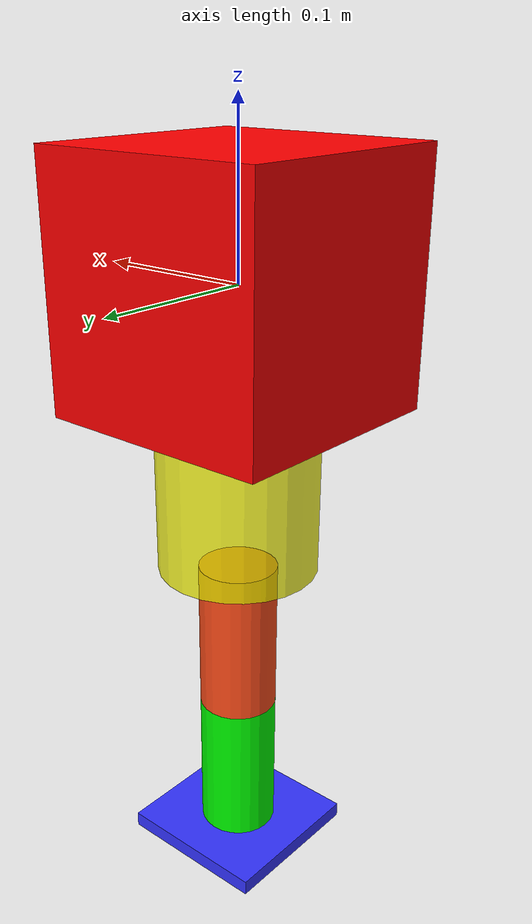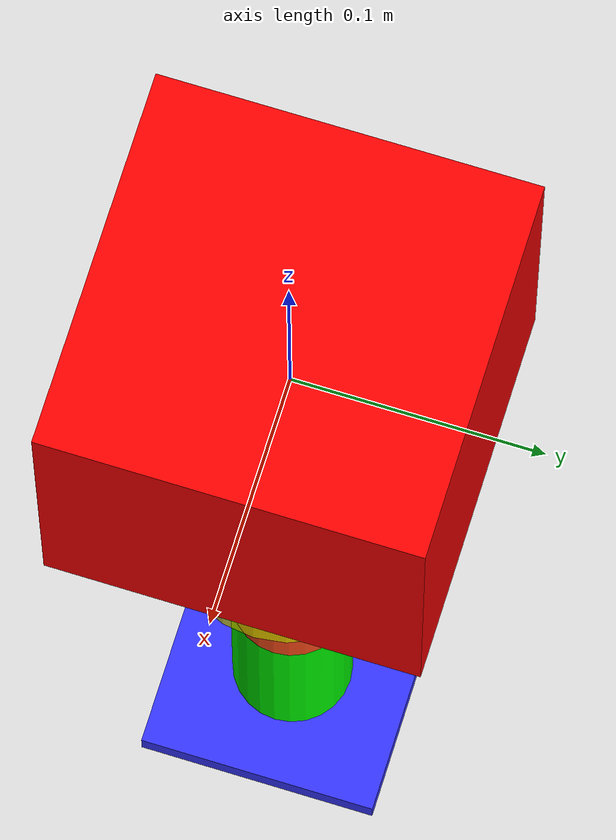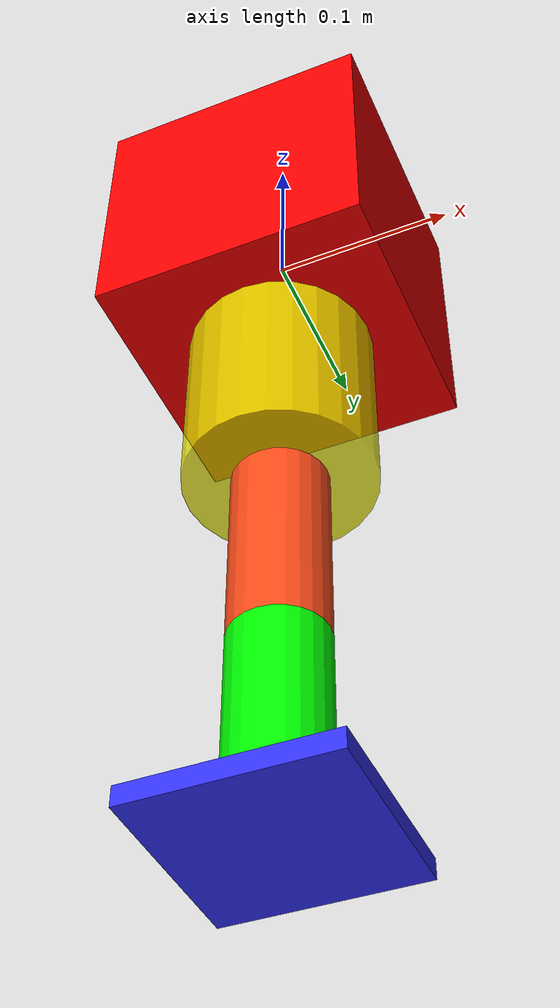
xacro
<?xml version='1.0' encoding='UTF-8'?>
<robot xmlns:xacro="http://www.ros.org/wiki/xacro" name="monoped">

    <xacro:include filename="robot_material.xacro"/>
    <xacro:include filename="robot_params.xacro"/>
    <xacro:include filename="inertial_macros.xacro"/>
    <xacro:include filename="gazebo_full.xacro" />

    <!-- BODY -->

    <link name="body_link">
        <visual>
            <origin xyz="0 0 0"/>
            <geometry>
                <box size="${b_x} ${b_y} ${b_z}"/>
            </geometry>
            <material name="red"/>
        </visual>
        <collision>
            <origin xyz="0 0 0"/>
            <geometry>
                <box size="${b_x} ${b_y} ${b_z}"/>
            </geometry>
        </collision>
        <xacro:inertial_box mass="${mass_body}" x="${b_x}" y="${b_y}" z="${b_z}">
            <origin xyz="0 0 0" rpy="0 0 0"/>
        </xacro:inertial_box>

    </link>

    <!-- UPPER LEG -->

    <joint name="body_to_upper_leg" type="fixed">
        <origin xyz="0 0 ${b2ul}" rpy="0 0 0"/>
        <parent link="body_link"/>
        <child link="upper_leg_link"/>
    </joint>

    <link name="upper_leg_link">
        <visual>
            <origin xyz="0 0 0" rpy="0 0 0"/>
            <geometry>
                <cylinder radius="${ul_r}" length="${ul_l}"/>
            </geometry>
            <material name="yellow"/>
        </visual>
        <collision>
            <origin xyz="0 0 0.025"/>
            <geometry>
                <cylinder radius="${ul_r}" length="${ul_l*0.1}"/>
            </geometry>
        </collision>
        <xacro:inertial_cylinder mass="${mass_upper_leg}" radius="${ul_r}" length="${ul_l}">
            <origin xyz="0 0 0" rpy="0 0 0"/>
        </xacro:inertial_cylinder>
    </link>

    <!-- LOWER LEG -->

    <joint name="upper_leg_to_lower_leg" type="prismatic">
        <origin xyz="0 0 ${ul2ll}" rpy="0 0 0"/>
        <parent link="upper_leg_link"/>
        <child link="lower_leg_link"/>
        <axis xyz="0 0 1"/>
        <limit lower="0" upper="0.08" effort="200" velocity="10"/>
        <dynamics damping="${joint_damping}" friction="${joint_friction}"/>
    </joint>

    <link name="lower_leg_link">
        <visual>
            <origin xyz="0 0 0" rpy="0 0 0"/>
            <geometry>
                <cylinder radius="${ll_r}" length="${ll_l}"/>
            </geometry>
            <material name="orange"/>
        </visual>
        <collision>
            <origin xyz="0 0 0"/>
            <geometry>
                <cylinder radius="${ll_r}" length="${ll_l}"/>
            </geometry>
        </collision>
        <xacro:inertial_cylinder mass="${mass_lower_leg}" radius="${ll_r}" length="${ll_l}">
            <origin xyz="0 0 0" rpy="0 0 0"/>
        </xacro:inertial_cylinder>
    </link>

    <!-- PASSSIVE LOWER LEG -->

    <joint name="lower_leg_to_passive_lower_leg" type="prismatic">
        <origin xyz="0 0 ${ul2ll}" rpy="0 0 0"/>
        <parent link="lower_leg_link"/>
        <child link="passive_lower_leg"/>
        <axis xyz="0 0 1"/>
        <limit lower="0" upper="0.1" effort="1000" velocity="1000"/>
        <dynamics damping="${joint_damping}" friction="${joint_friction}"/>
    </joint>

    <link name="passive_lower_leg">
        <visual>
            <origin xyz="0 0 0" rpy="0 0 0"/>
            <geometry>
                <cylinder radius="${ll_r}" length="${ll_l}"/>
            </geometry>
            <material name="green"/>
        </visual>
        <collision>
            <origin xyz="0 0 0" rpy="0 0 0"/>
            <geometry>
                <cylinder radius="${ll_r}" length="${ll_l}"/>
            </geometry>
        </collision>
        <xacro:inertial_cylinder mass="${mass_lower_leg}" radius="${ll_r}" length="${ll_l}">
            <origin xyz="0 0 0" rpy="0 0 0"/>
        </xacro:inertial_cylinder>
    </link>

    <!-- FOOT -->

    <joint name="passive_lower_leg_to_foot" type="fixed">
        <origin xyz="0 0 ${ll2f}" rpy="0 0 0"/>
        <parent link="passive_lower_leg"/>
        <child link="foot_link"/>
    </joint>

    <link name="foot_link">
        <visual>
            <origin xyz="0 0 0" rpy="0 0 0"/>
            <geometry>
                <box size="${f_x} ${f_y} ${f_z}"/>
            </geometry>
            <material name="blue"/>
        </visual>
        <collision name="foot_collision">
            <origin xyz="0 0 0"/>
            <geometry>
                <box size="${f_x} ${f_y} ${f_z}"/>
            </geometry>
        </collision>
        <xacro:inertial_box mass="${mass_foot}" x="${f_x}" y="${f_y}" z="${f_z}">
            <origin xyz="0 0 0" rpy="0 0 0"/>
        </xacro:inertial_box>
    </link>

    <gazebo reference="upper_leg_to_lower_leg">
        <springReference>0.0</springReference>
        <springStiffness>${joint_stiffness}</springStiffness>
    </gazebo>

    <gazebo reference="lower_leg_to_passive_lower_leg">
        <springReference>0.0</springReference>
        <springStiffness>${joint_stiffness}</springStiffness>
    </gazebo>

</robot>

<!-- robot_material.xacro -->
<robot xmlns:xacro="http://www.ros.org/wiki/xacro" >

    <material name="yellow">
        <color rgba="1 1 0 0.8"/>
    </material>

    <material name="orange">
        <color rgba="1 0.3 0.1 1"/>
    </material>

    <material name="blue">
        <color rgba="0.2 0.2 1 1"/>
    </material>

    <material name="red">
        <color rgba="1 0 0 1"/>
    </material>

    <material name="black">
        <color rgba="0 0 0 0.8"/>
    </material>

    <material name="grey">
        <color rgba="0.5 0.5 0.5 1"/>
    </material>

    <material name="white">
        <color rgba="1 1 1 1"/>
    </material>

    <material name="green">
        <color rgba="0 1 0 1"/>
    </material>

</robot>

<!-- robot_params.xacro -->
<robot xmlns:xacro="http://www.ros.org/wiki/xacro" >

    <!-- body/box -->
    <xacro:property name="b_x" value="0.15"/>
    <xacro:property name="b_y" value="0.15"/>
    <xacro:property name="b_z" value="0.15"/>
    <!-- upper_leg/cyclinder -->
    <xacro:property name="ul_r" value="0.05"/>
    <xacro:property name="ul_l" value="0.1"/>
    <!-- lower_leg/cyclinder -->
    <xacro:property name="ll_r" value="0.025"/>
    <xacro:property name="ll_l" value="0.1"/>
    <!-- foot/box -->
    <xacro:property name="f_x" value="0.1"/>
    <xacro:property name="f_y" value="0.1"/>
    <xacro:property name="f_z" value="0.01"/>
    <!-- foot/cyclinder -->
    <xacro:property name="f_r" value="0.01"/>
    <xacro:property name="f_l" value="0.15"/>
    <!-- foot_contact/sphere -->
    <xacro:property name="fc_r" value="0.001"/>

    <!-- joint origin z asix -->
    <!-- fix: body2upper_leg -->
    <xacro:property name="b2ul" value="-0.125" />
    <!-- prismatic: upper_leg2lower_leg -->
    <xacro:property name="ul2ll" value="-0.1" />
    <!-- fix: lower_leg2foot -->
    <xacro:property name="ll2f" value="-0.05" />

    <xacro:property name="mass_body" value="1.0"/>
    <xacro:property name="mass_upper_leg" value="0.001"/>
    <xacro:property name="mass_lower_leg" value="0.001"/>
    <xacro:property name="mass_foot" value="0.08"/>

    <xacro:property name="joint_damping" value="0.1"/>
    <xacro:property name="joint_friction" value="0.001"/>
    <xacro:property name="joint_stiffness" value="1000"/>

</robot>

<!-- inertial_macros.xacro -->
<robot xmlns:xacro="http://www.ros.org/wiki/xacro" >

    <!-- Specify some standard inertial calculations https://en.wikipedia.org/wiki/List_of_moments_of_inertia -->
    <!-- These make use of xacro's mathematical functionality -->

    <xacro:macro name="inertial_box" params="mass x y z *origin">
        <inertial>
            <xacro:insert_block name="origin"/>
            <mass value="${mass}" />
            <inertia ixx="${(1/12) * mass * (y*y+z*z)}" ixy="0.0" ixz="0.0"
                    iyy="${(1/12) * mass * (x*x+z*z)}" iyz="0.0"
                    izz="${(1/12) * mass * (x*x+y*y)}" />
        </inertial>
    </xacro:macro>

    <xacro:macro name="inertial_cylinder" params="mass length radius *origin">
        <inertial>
            <xacro:insert_block name="origin"/>
            <mass value="${mass}" />
            <inertia ixx="${(1/12) * mass * (3*radius*radius + length*length)}" ixy="0.0" ixz="0.0"
                    iyy="${(1/12) * mass * (3*radius*radius + length*length)}" iyz="0.0"
                    izz="${(1/2) * mass * (radius*radius)}" />
        </inertial>
    </xacro:macro>

</robot>
